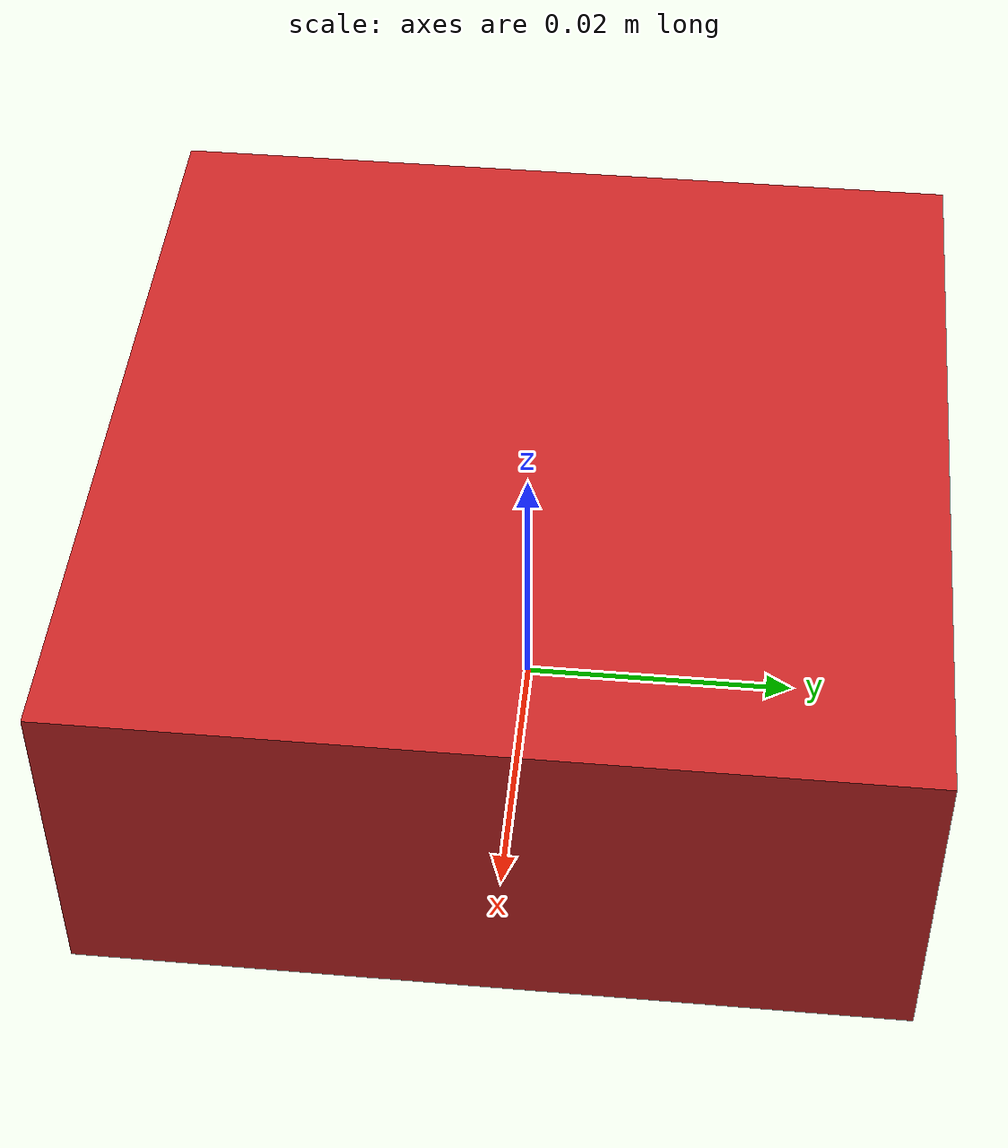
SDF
<sdf version='1.6'>
  <model name='cube'>
    <link name='cube_link'>
      <pose frame=''>0 0 0 0 -0 0</pose>
      <inertial>
        <pose frame=''>-0 0 0.025 0 -0 0</pose>
        <mass>0.6728</mass>
        <inertia>
          <ixx>0.0008946</ixx>
          <ixy>7.62739e-19</ixy>
          <ixz>-6.70523e-20</ixz>
          <iyy>0.0008946</iyy>
          <iyz>7.06484e-20</iyz>
          <izz>0.00150887</izz>
        </inertia>
      </inertial>
      <collision name='cube_link_collision'>
        <pose frame=''>0 0 0 0 -0 0</pose>
        <geometry>
          <mesh>
            <scale>0.5 0.5 0.5</scale>
            <uri>model://cube/meshes/cube_link.STL</uri>
          </mesh>
        </geometry>
      </collision>
      <visual name='cube_link_visual'>
        <pose frame=''>0 0 0 0 -0 0</pose>
        <geometry>
          <mesh>
            <scale>0.5 0.5 0.5</scale>
            <uri>model://cube/meshes/cube_link.STL</uri>
          </mesh>
        </geometry>
        <material>
          <script>
            <name>Gazebo/Red</name>
            <uri>file://media/materials/scripts/gazebo.material</uri>
          </script>
        </material>
      </visual>
    </link>
  </model>
</sdf>
